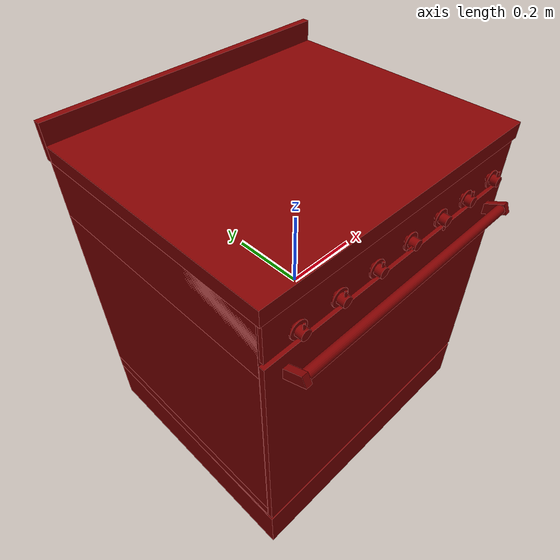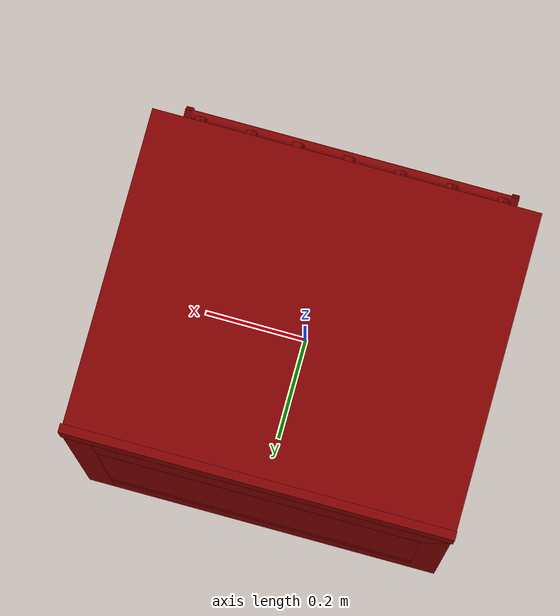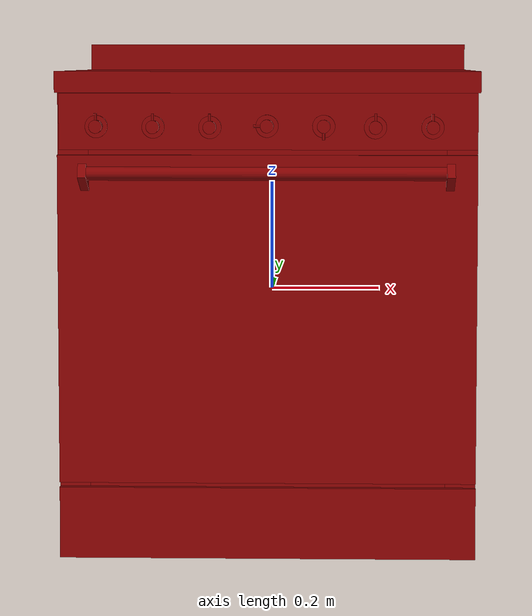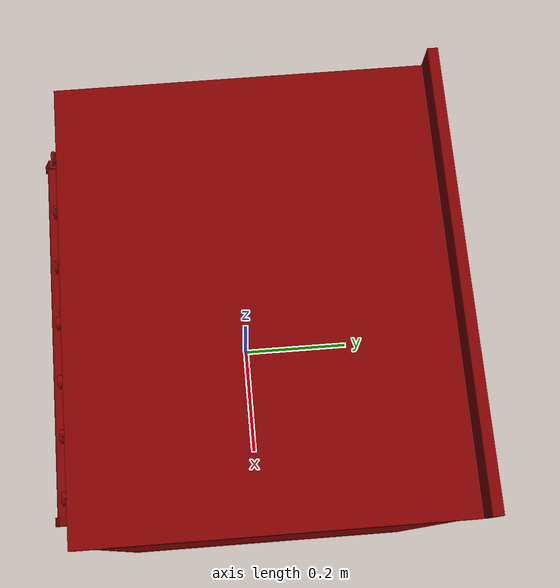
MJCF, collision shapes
<?xml version='1.0' encoding='UTF-8'?>
<mujoco model="model">
  <option timestep="0.002" gravity="0.0 0.0 -9.81"/>
  <compiler angle="radian"/>
  <asset>
    <mesh file="visuals/door.obj" name="door_vis"/>
    <mesh file="visuals/door_Clear.obj" name="door_Clear_vis"/>
    <mesh file="visuals/knob_center.obj" name="knob_center_vis"/>
    <mesh file="visuals/knob_front_left.obj" name="knob_front_left_vis"/>
    <mesh file="visuals/knob_front_right.obj" name="knob_front_right_vis"/>
    <mesh file="visuals/knob_rear_left.obj" name="knob_rear_left_vis"/>
    <mesh file="visuals/knob_rear_right.obj" name="knob_rear_right_vis"/>
    <mesh file="visuals/knob_temp.obj" name="knob_temp_vis"/>
    <mesh file="visuals/knob_time.obj" name="knob_time_vis"/>
    <mesh file="visuals/rack0.obj" name="rack0_vis"/>
    <mesh file="visuals/Body001.obj" name="Body001_vis"/>
    <texture file="visuals/T_BC001.png" name="Body001_material" type="2d"/>
    <material name="Body001_material" rgba="1 1 1 1.0" texture="Body001_material" shininess="0.4472135901451111" specular="2"/>
    <texture file="visuals/T_BC001.png" name="door_material" type="2d"/>
    <material name="door_material" rgba="1 1 1 1.0" texture="door_material" shininess="0.4472135901451111" specular="2"/>
    <texture file="visuals/T_BC001.png" name="door_Clear_material" type="2d"/>
    <material name="door_Clear_material" rgba="1 1 1 0.800000011920929" texture="door_Clear_material" shininess="0.4472135901451111" specular="0.3103448502657381"/>
    <texture file="visuals/T_BC001.png" name="knob_center_material" type="2d"/>
    <material name="knob_center_material" rgba="1 1 1 1.0" texture="knob_center_material" shininess="0.4472135901451111" specular="0.3103448502657381"/>
    <texture file="visuals/T_BC001.png" name="knob_front_left_material" type="2d"/>
    <material name="knob_front_left_material" rgba="1 1 1 1.0" texture="knob_front_left_material" shininess="0.4472135901451111" specular="0.3103448502657381"/>
    <texture file="visuals/T_BC001.png" name="knob_front_right_material" type="2d"/>
    <material name="knob_front_right_material" rgba="1 1 1 1.0" texture="knob_front_right_material" shininess="0.4472135901451111" specular="0.3103448502657381"/>
    <texture file="visuals/T_BC001.png" name="knob_rear_left_material" type="2d"/>
    <material name="knob_rear_left_material" rgba="1 1 1 1.0" texture="knob_rear_left_material" shininess="0.4472135901451111" specular="0.3103448502657381"/>
    <texture file="visuals/T_BC001.png" name="knob_rear_right_material" type="2d"/>
    <material name="knob_rear_right_material" rgba="1 1 1 1.0" texture="knob_rear_right_material" shininess="0.4472135901451111" specular="0.3103448502657381"/>
    <texture file="visuals/T_BC001.png" name="knob_temp_material" type="2d"/>
    <material name="knob_temp_material" rgba="1 1 1 1.0" texture="knob_temp_material" shininess="0.4472135901451111" specular="0.3103448502657381"/>
    <texture file="visuals/T_BC001.png" name="knob_time_material" type="2d"/>
    <material name="knob_time_material" rgba="1 1 1 1.0" texture="knob_time_material" shininess="0.4472135901451111" specular="0.3103448502657381"/>
    <texture file="visuals/T_BC001.png" name="rack0_material" type="2d"/>
    <material name="rack0_material" rgba="1 1 1 1.0" texture="rack0_material" shininess="0.4472135901451111" specular="4"/>
  </asset>
  <default>
    <default class="visual">
      <geom conaffinity="0" contype="0" group="1" type="mesh"/>
    </default>
    <default class="collision">
      <geom group="0" rgba="0.5 0 0 0.5"/>
    </default>
    <default class="spawn">
      <geom group="0" rgba="1 1 1 0.5" contype="0" conaffinity="0"/>
      <site group="0" rgba="1 1 1 0.5"/>
    </default>
    <default class="region">
      <geom group="1" conaffinity="0" contype="0" rgba="0 1 0 0"/>
    </default>
  </default>
  <worldbody>
    <body>
      <body name="object">
        <geom mesh="Body001_vis" type="mesh" solimp="0.998 0.998 0.001" solref="0.001 1" friction="0.95 0.3 0.1" class="visual" material="Body001_material"/>
        <geom type="box" pos="-0.34298584 0.03190899 -0.04368847" size="0.027025170624256134 0.3089369833469391 0.41411277651786804" quat="1.0 0.0 0.0 0.0" class="collision"/>
        <geom type="box" pos="0.00208287 0.29857945 -0.04368845" size="0.3236723244190216 0.042266372591257095 0.41411277651786804" quat="1.0 0.0 0.0 0.0" class="collision"/>
        <geom type="box" pos="-0.00000005 0.33227238 0.41424681" size="0.3741699457168579 0.008573531173169613 0.04382246360182762" quat="1.0 0.0 0.0 0.0" class="collision"/>
        <geom type="box" pos="0.34298468 0.03190899 -0.04368856" size="0.02702515758574009 0.3089369833469391 0.41411277651786804" quat="1.0 0.0 0.0 0.0" class="collision"/>
        <geom type="box" pos="-0.00000057 0.02506463 -0.39408930" size="0.37001046538352966 0.31578129529953003 0.06371200084686279" quat="1.0 0.0 0.0 0.0" class="collision"/>
        <geom type="box" pos="-0.00000057 0.03205755 0.29770617" size="0.37001046538352966 0.3087884187698364 0.07271813601255417" quat="1.0 0.0 0.0 0.0" class="collision"/>
        <geom type="box" pos="-0.00000064 0.03205753 -0.31272407" size="0.3700103759765625 0.3087884187698364 0.022748181596398354" quat="1.0 0.0 0.0 0.0" class="collision"/>
        <geom type="box" pos="0.00011535 0.01620170 0.38918443" size="0.3743075728416443 0.30749714374542236 0.018760086968541145" quat="1.0 0.0 0.0 0.0" class="collision"/>
        <geom type="box" pos="-0.30823198 -0.01521174 -0.05365212" size="0.007938775233924389 0.23885123431682587 0.005848837085068226" quat="1.0 0.0 0.0 0.0" class="collision"/>
        <geom type="box" pos="0.30963591 -0.01521174 -0.05365212" size="0.007938775233924389 0.23885123431682587 0.005848837085068226" quat="1.0 0.0 0.0 0.0" class="collision"/>
        <geom type="box" pos="0.00136812 -0.28273484 0.32049470" size="0.3686416745185852 0.00447508692741394 0.04977039620280266" quat="1.0 0.0 0.0 0.0" class="collision"/>
        <body name="door">
          <joint axis="1.0 0.0 0.0" pos="-0.00000122 -0.29083803 -0.32116671" limited="true" name="door_joint" range="0.0 1.5707963267948966" type="hinge" damping="1" frictionloss="1" armature=".01" stiffness="0.05"/>
          <geom mesh="door_vis" type="mesh" solimp="0.998 0.998 0.001" solref="0.001 1" friction="0.95 0.3 0.1" class="visual" material="door_material"/>
          <geom class="collision" type="box" pos="-0.00000060 -0.28461254 -0.03011755" size="0.3700103759765625 0.006129380315542221 0.29148954153060913" quat="1.0 0.0 0.0 0.0" name="door_main"/>
          <geom class="collision" type="box" pos="0.32134911 -0.31329471 0.22349130" size="0.0073158396407961845 0.030376754701137543 0.012979610823094845" quat="0.9768823981285095 -0.21377751231193542 -4.746814326315972e-17 1.4460923565373291e-25" name="door_handle_Collider1"/>
          <geom class="collision" type="box" pos="-0.32124144 -0.31329471 0.22349130" size="0.0073158396407961845 0.030376754701137543 0.012979610823094845" quat="0.9768823981285095 -0.21377751231193542 -4.746814326315972e-17 1.4460923565373291e-25" name="door_handle_Collider2"/>
          <geom class="collision" type="cylinder" pos="0.00027369 -0.32908010 0.23064069" size="0.011848964728415012 0.31535735726356506" quat="0.7071068286895752 -0.0 0.7071067690849304 0.0" name="door_handle_main"/>
          <geom class="collision" type="box" pos="0.00021983 -0.28448689 -0.02045045" size="0.27437999844551086 0.004157399293035269 0.1755835860967636" quat="1.0 0.0 0.0 0.0"/>
          <body name="door_Clear">
            <geom mesh="door_Clear_vis" type="mesh" solimp="0.998 0.998 0.001" solref="0.001 1" friction="0.95 0.3 0.1" class="visual" material="door_Clear_material"/>
            <geom type="box" pos="0.00021983 -0.28448689 -0.02045045" size="0.27437999844551086 0.004157399293035269 0.1755835860967636" quat="1.0 0.0 0.0 0.0" class="collision"/>
          </body>
        </body>
        <body name="knob_center">
          <joint axis="0.0 -1.0 0.0" pos="-0.09990987 -0.30294013 0.31033097" limited="true" name="knob_center_joint" range="0.0 3.6651914291880923" type="hinge" damping="0.05" frictionloss="0.75" armature="1"/>
          <geom mesh="knob_center_vis" type="mesh" solimp="0.998 0.998 0.001" solref="0.001 1" friction="0.95 0.3 0.1" class="visual" material="knob_center_material"/>
          <geom type="cylinder" pos="-0.09990989 -0.29839414 0.31035863" size="0.019924063235521317 0.0015801219269633293" quat="0.23711955547332764 0.2371196448802948 0.6661639213562012 -0.6661638021469116" class="collision" friction="100 0.5 0.01"/>
          <geom type="cylinder" pos="-0.09990987 -0.29292560 0.31035863" size="0.007736132014542818 0.003806669032201171" quat="0.23711955547332764 0.2371196448802948 0.6661639213562012 -0.6661638021469116" class="collision" friction="100 0.5 0.01"/>
          <geom type="cylinder" name="knob_center_main"  pos="-0.09990989 -0.30806059 0.31035863" size="0.011577902361750603 0.008451039902865887" quat="0.23711955547332764 0.2371196448802948 0.6661639213562012 -0.6661638021469116" class="collision" friction="100 0.5 0.01"/>
          <geom type="cylinder" pos="-0.09987297 -0.31026536 0.32685564" size="0.002389253582805395 0.007319331169128418" quat="0.0016244205180555582 -4.2252992216162966e-08 0.9999986886978149 1.1931875576465245e-07" class="collision" friction="100 0.5 0.01"/>
        </body>
        <body name="knob_front_left">
          <joint axis="0.0 -1.0 0.0" pos="-0.29976547 -0.30294013 0.31158887" limited="true" name="knob_front_left_joint" range="0.0 3.6651914291880923" type="hinge" damping="0.05" armature="1" frictionloss="0.75"/>
          <geom mesh="knob_front_left_vis" type="mesh" solimp="0.998 0.998 0.001" solref="0.001 1" friction="0.95 0.3 0.1" class="visual" material="knob_front_left_material"/>
          <geom type="cylinder" pos="-0.29966700 -0.31026536 0.32817928" size="0.002389253582805395 0.007319331169128418" quat="0.0016244205180555582 -4.2252992216162966e-08 0.9999986886978149 1.1931875576465245e-07" class="collision" friction="100 0.5 0.01"/>
          <geom type="cylinder" name="knob_front_left_main" pos="-0.29970396 -0.30806062 0.31168227" size="0.011577902361750603 0.008451039902865887" quat="0.23711955547332764 0.2371196448802948 0.6661639213562012 -0.6661638021469116" class="collision" friction="100 0.5 0.01"/>
          <geom type="cylinder" pos="-0.29970393 -0.29292560 0.31168227" size="0.007736132014542818 0.003806669032201171" quat="0.23711955547332764 0.2371196448802948 0.6661639213562012 -0.6661638021469116" class="collision" friction="100 0.5 0.01"/>
          <geom type="cylinder" pos="-0.29970396 -0.29839414 0.31168227" size="0.019924063235521317 0.0015801219269633293" quat="0.23711955547332764 0.2371196448802948 0.6661639213562012 -0.6661638021469116" class="collision" friction="100 0.5 0.01"/>
        </body>
        <body name="knob_front_right">
          <joint axis="0.0 -1.0 0.0" pos="0.28995168 -0.30294013 0.31013311" limited="true" name="knob_front_right_joint" range="0.0 3.6651914291880923" type="hinge" damping="0.05" armature="1" frictionloss="0.75"/>
          <geom mesh="knob_front_right_vis" type="mesh" solimp="0.998 0.998 0.001" solref="0.001 1" friction="0.95 0.3 0.1" class="visual" material="knob_front_right_material"/>
          <geom type="cylinder" pos="0.29009566 -0.31026536 0.32675935" size="0.002389253582805395 0.007319331169128418" quat="0.0016244205180555582 -4.2252992216162966e-08 0.9999986886978149 1.1931875576465245e-07" class="collision" friction="100 0.5 0.01"/>
          <geom type="cylinder" name="knob_front_right_main" pos="0.29005876 -0.30806059 0.31026234" size="0.011577902361750603 0.008451039902865887" quat="0.23711955547332764 0.2371196448802948 0.6661639213562012 -0.6661638021469116" class="collision" friction="100 0.5 0.01"/>
          <geom type="cylinder" pos="0.29005879 -0.29292560 0.31026234" size="0.007736132014542818 0.003806669032201171" quat="0.23711955547332764 0.2371196448802948 0.6661639213562012 -0.6661638021469116" class="collision" friction="100 0.5 0.01"/>
          <geom type="cylinder" pos="0.29005876 -0.29839414 0.31026231" size="0.019924063235521317 0.0015801219269633293" quat="0.23711955547332764 0.2371196448802948 0.6661639213562012 -0.6661638021469116" class="collision" friction="100 0.5 0.01"/>
        </body>
        <body name="knob_rear_left">
          <joint axis="0.0 -1.0 0.0" pos="-0.19976488 -0.30294013 0.31097282" limited="true" name="knob_rear_left_joint" range="0.0 3.6651914291880923" type="hinge" damping="0.05" armature="1" frictionloss="0.75"/>
          <geom mesh="knob_rear_left_vis" type="mesh" solimp="0.998 0.998 0.001" solref="0.001 1" friction="0.95 0.3 0.1" class="visual" material="knob_rear_left_material"/>
          <geom type="cylinder" pos="-0.19966950 -0.31026536 0.32757617" size="0.002389253582805395 0.007319331169128418" quat="0.0016244205180555582 -4.2252992216162966e-08 0.9999986886978149 1.1931875576465245e-07" class="collision" friction="100 0.5 0.01"/>
          <geom type="cylinder" name="knob_rear_left_main" pos="-0.19970639 -0.30806062 0.31107919" size="0.011577902361750603 0.008451039902865887" quat="0.23711955547332764 0.2371196448802948 0.6661639213562012 -0.6661638021469116" class="collision" friction="100 0.5 0.01"/>
          <geom type="cylinder" pos="-0.19970638 -0.29292560 0.31107919" size="0.007736132014542818 0.003806669032201171" quat="0.23711955547332764 0.2371196448802948 0.6661639213562012 -0.6661638021469116" class="collision" friction="100 0.5 0.01"/>
          <geom type="cylinder" pos="-0.19970639 -0.29839414 0.31107919" size="0.019924063235521317 0.0015801219269633293" quat="0.23711955547332764 0.2371196448802948 0.6661639213562012 -0.6661638021469116" class="collision" friction="100 0.5 0.01"/>
        </body>
        <body name="knob_rear_right">
          <joint axis="0.0 -1.0 0.0" pos="0.18995655 -0.30294013 0.31027482" limited="true" name="knob_rear_right_joint" range="0.0 3.6651914291880923" type="hinge" damping="0.05" armature="1" frictionloss="0.75"/>
          <geom mesh="knob_rear_right_vis" type="mesh" solimp="0.998 0.998 0.001" solref="0.001 1" friction="0.95 0.3 0.1" class="visual" material="knob_rear_right_material"/>
          <geom type="cylinder" pos="0.19047339 -0.31026536 0.32721512" size="0.002389253582805395 0.007319331169128418" quat="0.0016244205180555582 -4.2252992216162966e-08 0.9999986886978149 1.1931875576465245e-07" class="collision" friction="100 0.5 0.01"/>
          <geom type="cylinder" name="knob_rear_right_main"  pos="0.18991347 -0.30806059 0.31029175" size="0.011577902361750603 0.008451039902865887" quat="0.23711955547332764 0.2371196448802948 0.6661639213562012 -0.6661638021469116" class="collision" friction="100 0.5 0.01"/>
          <geom type="cylinder" pos="0.19043651 -0.29292560 0.31071810" size="0.007736132014542818 0.003806669032201171" quat="0.23711955547332764 0.2371196448802948 0.6661639213562012 -0.6661638021469116" class="collision" friction="100 0.5 0.01"/>
          <geom type="cylinder" pos="0.18991347 -0.29839420 0.31029175" size="0.019924063235521317 0.0015801219269633293" quat="0.23711955547332764 0.2371196448802948 0.6661639213562012 -0.6661638021469116" class="collision" friction="100 0.5 0.01"/>
        </body>
        <body name="knob_temp">
          <joint axis="0.0 1.0 0.0" pos="0.09953994 -0.30294013 0.31218164" limited="true" name="knob_temp_joint" range="0.0 5.585053606381854" type="hinge" damping="0.05" frictionloss="0.75" armature="1"/>
          <geom mesh="knob_temp_vis" type="mesh" solimp="0.998 0.998 0.001" solref="0.001 1" friction="0.95 0.3 0.1" class="visual" material="knob_temp_material"/>
          <geom class="collision" type="cylinder" pos="0.09959555 -0.31026533 0.29565696" size="0.002389253582805395 0.007319313008338213" quat="0.9999902248382568 1.5157828769929438e-08 -0.004418584983795881 -4.280441601167695e-08" friction="100 0.5 0.01"/>
          <geom type="cylinder" name="knob_temp_main" pos="0.09954029 -0.30806059 0.31215392" size="0.011577902361750603 0.008451039902865887" quat="0.665498673915863 0.6654988527297974 -0.23897995054721832 0.23897986114025116" class="collision" friction="100 0.5 0.01"/>
          <geom type="cylinder" pos="0.09954029 -0.29292557 0.31215392" size="0.007736132014542818 0.003806669032201171" quat="0.6654985547065735 0.6654989123344421 -0.2389800250530243 0.2389799803495407" class="collision" friction="100 0.5 0.01"/>
          <geom type="cylinder" pos="0.09954028 -0.29839414 0.31215398" size="0.01992405392229557 0.0015801219269633293" quat="0.6654985547065735 0.6654989123344421 -0.2389800250530243 0.2389799803495407" class="collision" friction="100 0.5 0.01"/>
        </body>
        <body name="knob_time">
          <joint axis="0.0 1.0 0.0" pos="0.00029697 -0.30294013 0.31254627" limited="true" name="knob_time_joint" range="0.0 5.235987755982989" type="hinge" damping="0.05" armature="1" frictionloss="0.75"/>
          <geom mesh="knob_time_vis" type="mesh" solimp="0.998 0.998 0.001" solref="0.001 1" friction="0.95 0.3 0.1" class="visual" material="knob_time_material"/>
          <geom class="collision" type="cylinder" pos="-0.01622692 -0.31026536 0.31270812" size="0.002389253582805395 0.007319327909499407" quat="0.7055845856666565 -1.939975291520568e-08 0.7086256742477417 5.478344178300176e-08" friction="100 0.5 0.01"/>
          <geom type="cylinder" name="knob_time_main" pos="0.00026933 -0.30806059 0.31254665" size="0.011577902361750603 0.008451039902865887" quat="0.6375680565834045 0.6375681161880493 0.305789053440094 -0.3057890236377716" class="collision" friction="100 0.5 0.01"/>
          <geom type="cylinder" pos="0.00026936 -0.29292560 0.31254665" size="0.007736128754913807 0.003806669032201171" quat="0.6375678777694702 0.6375681757926941 0.30578911304473877 -0.30578917264938354" class="collision" friction="100 0.5 0.01"/>
          <geom type="cylinder" pos="0.00026932 -0.29839414 0.31254662" size="0.019924039021134377 0.0015801220433786511" quat="0.6375679969787598 0.6375681757926941 0.305789053440094 -0.305789053440094" class="collision" friction="100 0.5 0.01"/>
        </body>
        <body name="rack0">
          <geom class="region" name="reg_rack0" type="box" pos="0.0008584100000000039 -0.01725849 0.092867645" size="0.30311036 0.22299006999999998 0.127234005"/>
          <joint axis="0.0 -1.0 0.0" pos="0.00060697 -0.01735658 -0.04199167" limited="true" name="rack0_joint" range="0.0 0.4" type="slide" damping="1" frictionloss="1" armature=".01" stiffness="0.05"/>
          <geom mesh="rack0_vis" type="mesh" solimp="0.998 0.998 0.001" solref="0.001 1" friction="0.95 0.3 0.1" class="visual" material="rack0_material"/>
          <geom type="box" pos="0.00171628 -0.01648758 -0.03981532" size="0.31011250615119934 0.2305225282907486 0.006448785308748484" quat="1.0 0.0 0.0 0.0" class="collision"/>
        </body>
        <geom class="region" name="reg_int" type="box" pos="0.00041062999999999517 -0.012755005 -0.033011689999999996" size="0.29959612999999996 0.253186505 0.25311334"/>
        <site type="cylinder" rgba="0.3 0.4 1 0.5" size="0.029327258467674255 0.005962718743830919" pos="-0.23864788 0.16155213 0.40127219" name="burner_on_rear_left"/>
        <site type="cylinder" rgba="0.3 0.4 1 0.5" size="0.019440459087491035 0.006133407354354858" pos="-0.23872614 -0.12490387 0.39995722" name="burner_on_front_left"/>
        <site type="cylinder" rgba="0.3 0.4 1 0.5" size="0.02889215759932995 0.0061334106139838696" pos="0.23818661 -0.12354734 0.40087275" name="burner_on_front_right"/>
        <site type="cylinder" rgba="0.3 0.4 1 0.5" size="0.028583304956555367 0.005962730851024389" pos="0.23795219 0.16270742 0.40124993" name="burner_on_rear_right"/>
        <site type="cylinder" rgba="0.3 0.4 1 0.5" size="0.05686085671186447 0.007666300516575575" pos="0.00021069 0.01962258 0.39974679" name="burner_on_center"/>
        <site type="cylinder" rgba="0.5 0 0 0" size="0.029327258467674255 4.999999873689376e-05" pos="-0.23864788 0.16155213 0.40789451" name="burner_rear_left_place_site"/>
        <site type="cylinder" rgba="0.5 0 0 0" size="0.019440459087491035 4.999999873689376e-05" pos="-0.23872614 -0.12490387 0.40789466" name="burner_front_left_place_site"/>
        <site type="cylinder" rgba="0.5 0 0 0" size="0.02889215759932995 4.999999509891495e-05" pos="0.23818661 -0.12354734 0.40789466" name="burner_front_right_place_site"/>
        <site type="cylinder" rgba="0.5 0 0 0" size="0.028583304956555367 4.999999873689376e-05" pos="0.23795219 0.16270742 0.40789448" name="burner_rear_right_place_site"/>
        <site type="cylinder" rgba="0.5 0 0 0" size="0.05686085671186447 4.999999873689376e-05" pos="0.00021069 0.01962258 0.40789451" name="burner_center_place_site"/>
        <geom class="region" name="reg_main" type="box" pos="-5.849999999973932e-07 0.025001600000000013 -0.04365213499999998" size="0.371010375 0.31684433 0.415149135"/>
      </body>
    </body>
  </worldbody>
  <actuator>
    <motor name="door_joint_actuator" joint="door_joint" gear="50"/>
    <motor name="knob_center_joint_actuator" joint="knob_center_joint" gear="50"/>
    <motor name="knob_front_left_joint_actuator" joint="knob_front_left_joint" gear="50"/>
    <motor name="knob_front_right_joint_actuator" joint="knob_front_right_joint" gear="50"/>
    <motor name="knob_rear_left_joint_actuator" joint="knob_rear_left_joint" gear="50"/>
    <motor name="knob_rear_right_joint_actuator" joint="knob_rear_right_joint" gear="50"/>
    <motor name="knob_temp_joint_actuator" joint="knob_temp_joint" gear="50"/>
    <motor name="knob_time_joint_actuator" joint="knob_time_joint" gear="50"/>
    <motor name="rack0_joint_actuator" joint="rack0_joint" gear="50"/>
  </actuator>
</mujoco>
